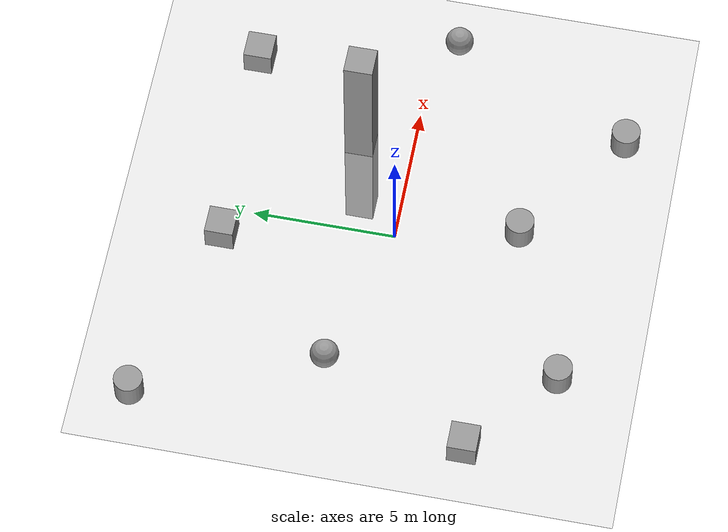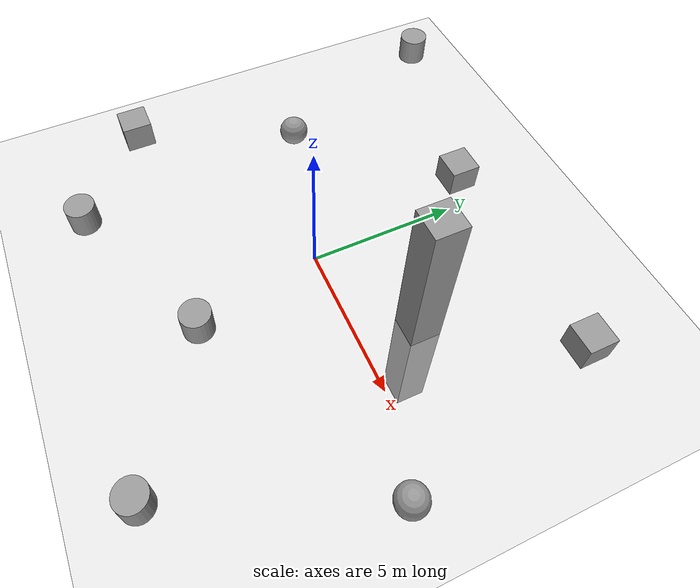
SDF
<sdf version="1.7">
 <world name="default">
  <light name="sun" type="directional">
   <pose>0 0 10 0 -0 0</pose>
   <diffuse>0.8 0.8 0.8 1</diffuse>
   <specular>0.2 0.2 0.2 1</specular>
   <attenuation>
    <range>1000</range>
    <constant>0.9</constant>
    <linear>0.01</linear>
    <quadratic>0.001</quadratic>
   </attenuation>
   <direction>-0.5 0.1 -0.9</direction>
   <spot><inner_angle>0</inner_angle><outer_angle>0</outer_angle><falloff>0</falloff></spot>
  </light>
  <model name="ground_plane">
   <static>1</static>
   <link name="link">
    <collision name="collision">
     <geometry><plane><normal>0 0 1</normal><size>100 100</size></plane></geometry>
     <surface>
      <contact><collide_bitmask>65535</collide_bitmask></contact>
      <friction><ode><mu>100</mu><mu2>50</mu2></ode></friction>
     </surface>
    </collision>
    <visual name="visual">
     <cast_shadows>0</cast_shadows>
     <geometry><plane><normal>0 0 1</normal><size>100 100</size></plane></geometry>
     <material>
      <script><uri>file://media/materials/scripts/gazebo.material</uri><name>Gazebo/Grey</name></script>
     </material>
    </visual>
   </link>
  </model>
  <gravity>0 0 -9.8</gravity>
  <magnetic_field>6e-06 2.3e-05 -4.2e-05</magnetic_field>
  <atmosphere type="adiabatic"/>
  <physics type="ode">
   <max_step_size>0.001</max_step_size>
   <real_time_factor>1</real_time_factor>
   <real_time_update_rate>1000</real_time_update_rate>
  </physics>
  <scene><ambient>0.4 0.4 0.4 1</ambient><background>0.7 0.7 0.7 1</background><shadows>1</shadows></scene>
  <spherical_coordinates>
   <surface_model>EARTH_WGS84</surface_model>
   <latitude_deg>0</latitude_deg>
   <longitude_deg>0</longitude_deg>
   <elevation>0</elevation>
   <heading_deg>0</heading_deg>
  </spherical_coordinates>
  <model name="unit_box">
   <pose>6.22534 6.07045 0.499995 1e-05 -0 0</pose>
   <link name="link">
    <inertial>
     <mass>1</mass>
     <inertia>
      <ixx>0.166667</ixx>
      <ixy>0</ixy>
      <ixz>0</ixz>
      <iyy>0.166667</iyy>
      <iyz>0</iyz>
      <izz>0.166667</izz>
     </inertia>
    </inertial>
    <collision name="collision"><geometry><box><size>1 1 1</size></box></geometry></collision>
    <visual name="visual">
     <geometry><box><size>1 1 1</size></box></geometry>
     <material>
      <script><name>Gazebo/Grey</name><uri>file://media/materials/scripts/gazebo.material</uri></script>
     </material>
    </visual>
   </link>
  </model>
  <model name="unit_sphere">
   <pose>8.03872 -0.837628 0.5 0 -0 0</pose>
   <link name="link">
    <inertial>
     <mass>1</mass>
     <inertia><ixx>0.1</ixx><ixy>0</ixy><ixz>0</ixz><iyy>0.1</iyy><iyz>0</iyz><izz>0.1</izz></inertia>
    </inertial>
    <collision name="collision"><geometry><sphere><radius>0.5</radius></sphere></geometry></collision>
    <visual name="visual">
     <geometry><sphere><radius>0.5</radius></sphere></geometry>
     <material>
      <script><name>Gazebo/Grey</name><uri>file://media/materials/scripts/gazebo.material</uri></script>
     </material>
    </visual>
   </link>
  </model>
  <model name="unit_cylinder">
   <pose>5.16601 -7.30034 0.499997 4e-06 4e-06 -0</pose>
   <link name="link">
    <inertial>
     <mass>1</mass>
     <inertia><ixx>0.145833</ixx><ixy>0</ixy><ixz>0</ixz><iyy>0.145833</iyy><iyz>0</iyz><izz>0.125</izz></inertia>
    </inertial>
    <collision name="collision">
     <geometry><cylinder><radius>0.5</radius><length>1</length></cylinder></geometry>
    </collision>
    <visual name="visual">
     <geometry><cylinder><radius>0.5</radius><length>1</length></cylinder></geometry>
     <material>
      <script><name>Gazebo/Grey</name><uri>file://media/materials/scripts/gazebo.material</uri></script>
     </material>
    </visual>
   </link>
  </model>
  <model name="unit_box_0">
   <pose>-1.03927 5.92532 0.499995 0 1e-05 0</pose>
   <link name="link">
    <inertial>
     <mass>1</mass>
     <inertia>
      <ixx>0.166667</ixx>
      <ixy>0</ixy>
      <ixz>0</ixz>
      <iyy>0.166667</iyy>
      <iyz>0</iyz>
      <izz>0.166667</izz>
     </inertia>
    </inertial>
    <collision name="collision"><geometry><box><size>1 1 1</size></box></geometry></collision>
    <visual name="visual">
     <geometry><box><size>1 1 1</size></box></geometry>
     <material>
      <script><name>Gazebo/Grey</name><uri>file://media/materials/scripts/gazebo.material</uri></script>
     </material>
    </visual>
   </link>
  </model>
  <model name="unit_sphere_0">
   <pose>-5.1916 1.45077 0.5 0 -0 0</pose>
   <link name="link">
    <inertial>
     <mass>1</mass>
     <inertia><ixx>0.1</ixx><ixy>0</ixy><ixz>0</ixz><iyy>0.1</iyy><iyz>0</iyz><izz>0.1</izz></inertia>
    </inertial>
    <collision name="collision"><geometry><sphere><radius>0.5</radius></sphere></geometry></collision>
    <visual name="visual">
     <geometry><sphere><radius>0.5</radius></sphere></geometry>
     <material>
      <script><name>Gazebo/Grey</name><uri>file://media/materials/scripts/gazebo.material</uri></script>
     </material>
    </visual>
   </link>
  </model>
  <model name="unit_cylinder_0">
   <pose>-4.47198 -6.5008 0.499997 0 -0 0</pose>
   <link name="link">
    <inertial>
     <mass>1</mass>
     <inertia><ixx>0.145833</ixx><ixy>0</ixy><ixz>0</ixz><iyy>0.145833</iyy><iyz>0</iyz><izz>0.125</izz></inertia>
    </inertial>
    <collision name="collision">
     <geometry><cylinder><radius>0.5</radius><length>1</length></cylinder></geometry>
    </collision>
    <visual name="visual">
     <geometry><cylinder><radius>0.5</radius><length>1</length></cylinder></geometry>
     <material>
      <script><name>Gazebo/Grey</name><uri>file://media/materials/scripts/gazebo.material</uri></script>
     </material>
    </visual>
   </link>
  </model>
  <model name="unit_cylinder_1">
   <pose>0.910303 -4.25107 0.499992 -3e-06 4e-06 0</pose>
   <link name="link">
    <inertial>
     <mass>1</mass>
     <inertia><ixx>0.145833</ixx><ixy>0</ixy><ixz>0</ixz><iyy>0.145833</iyy><iyz>0</iyz><izz>0.125</izz></inertia>
    </inertial>
    <collision name="collision">
     <geometry><cylinder><radius>0.5</radius><length>1</length></cylinder></geometry>
    </collision>
    <visual name="visual">
     <geometry><cylinder><radius>0.5</radius><length>1</length></cylinder></geometry>
     <material>
      <script><name>Gazebo/Grey</name><uri>file://media/materials/scripts/gazebo.material</uri></script>
     </material>
    </visual>
   </link>
  </model>
  <model name="unit_box_2">
   <pose>-7.63493 -3.82436 0.499995 1e-05 -0 0</pose>
   <link name="link">
    <inertial>
     <mass>1</mass>
     <inertia>
      <ixx>0.166667</ixx>
      <ixy>0</ixy>
      <ixz>0</ixz>
      <iyy>0.166667</iyy>
      <iyz>0</iyz>
      <izz>0.166667</izz>
     </inertia>
    </inertial>
    <collision name="collision"><geometry><box><size>1 1 1</size></box></geometry></collision>
    <visual name="visual">
     <geometry><box><size>1 1 1</size></box></geometry>
     <material>
      <script><name>Gazebo/Grey</name><uri>file://media/materials/scripts/gazebo.material</uri></script>
     </material>
    </visual>
   </link>
  </model>
  <model name="unit_cylinder_2">
   <pose>-7.63454 7.75183 0.499992 -3e-06 4e-06 0</pose>
   <link name="link">
    <inertial>
     <mass>1</mass>
     <inertia><ixx>0.145833</ixx><ixy>0</ixy><ixz>0</ixz><iyy>0.145833</iyy><iyz>0</iyz><izz>0.125</izz></inertia>
    </inertial>
    <collision name="collision">
     <geometry><cylinder><radius>0.5</radius><length>1</length></cylinder></geometry>
    </collision>
    <visual name="visual">
     <geometry><cylinder><radius>0.5</radius><length>1</length></cylinder></geometry>
     <material>
      <script><name>Gazebo/Grey</name><uri>file://media/materials/scripts/gazebo.material</uri></script>
     </material>
    </visual>
   </link>
  </model>
  <model name="unit_box_1">
   <link name="link">
    <inertial>
     <mass>1</mass>
     <inertia>
      <ixx>0.166667</ixx>
      <ixy>0</ixy>
      <ixz>0</ixz>
      <iyy>0.166667</iyy>
      <iyz>0</iyz>
      <izz>0.166667</izz>
     </inertia>
    </inertial>
    <visual name="visual">
     <geometry><box><size>1 1 10</size></box></geometry>
     <material>
      <script><name>Gazebo/Grey</name><uri>file://media/materials/scripts/gazebo.material</uri></script>
      <shader type="pixel"><normal_map>__default__</normal_map></shader>
      <ambient>0.3 0.3 0.3 1</ambient>
      <diffuse>0.7 0.7 0.7 1</diffuse>
      <specular>0.01 0.01 0.01 1</specular>
      <emissive>0 0 0 1</emissive>
     </material>
    </visual>
    <collision name="collision">
     <geometry><box><size>1 1 10</size></box></geometry>
     <surface>
      <friction>
       <ode><mu>1</mu><mu2>1</mu2><fdir1>0 0 0</fdir1><slip1>0</slip1><slip2>0</slip2></ode>
       <torsional>
        <coefficient>1</coefficient>
        <patch_radius>0</patch_radius>
        <surface_radius>0</surface_radius>
        <use_patch_radius>1</use_patch_radius>
        <ode><slip>0</slip></ode>
       </torsional>
      </friction>
      <bounce><restitution_coefficient>0</restitution_coefficient><threshold>1e+06</threshold></bounce>
      <contact>
       <collide_without_contact>0</collide_without_contact>
       <collide_without_contact_bitmask>1</collide_without_contact_bitmask>
       <collide_bitmask>1</collide_bitmask>
       <ode>
        <soft_cfm>0</soft_cfm>
        <soft_erp>0.2</soft_erp>
        <kp>1e+13</kp>
        <kd>1</kd>
        <max_vel>0.01</max_vel>
        <min_depth>0</min_depth>
       </ode>
       <bullet>
        <split_impulse>1</split_impulse>
        <split_impulse_penetration_threshold>-0.01</split_impulse_penetration_threshold>
        <soft_cfm>0</soft_cfm>
        <soft_erp>0.2</soft_erp>
        <kp>1e+13</kp>
        <kd>1</kd>
       </bullet>
      </contact>
     </surface>
    </collision>
   </link>
   <static>0</static>
   <pose>3.54033 1.87256 0.5 0 -0 0</pose>
  </model>
 </world>
</sdf>
